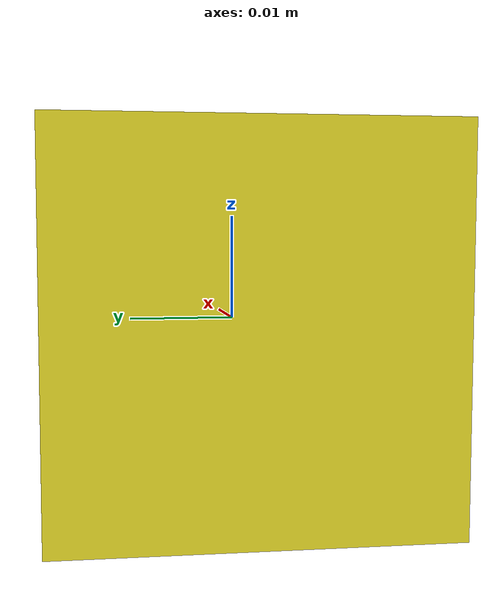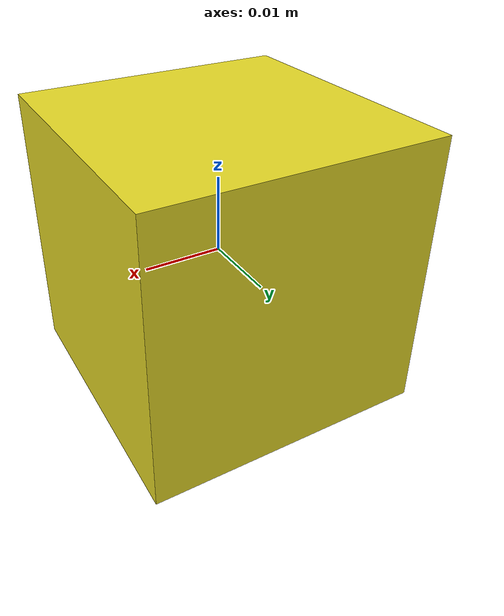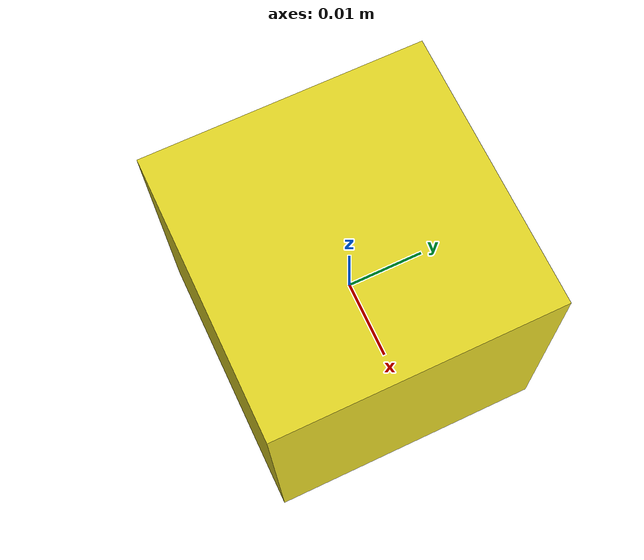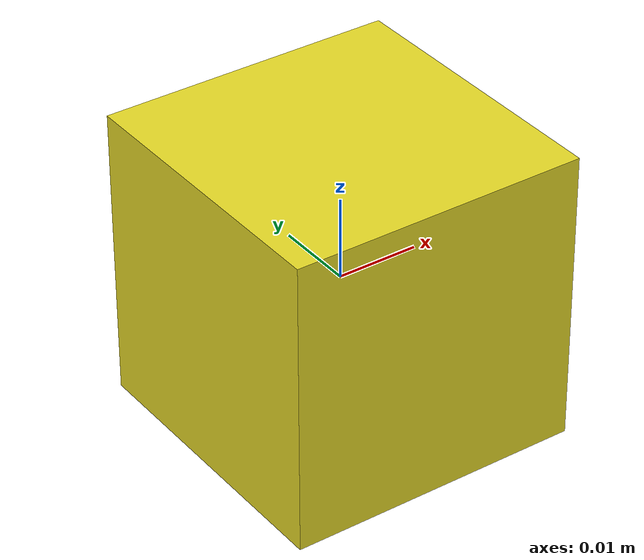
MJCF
<mujoco model="Cube">
  <compiler texturedir="assets"/>
  <asset>
    <texture type="skybox" builtin="gradient" width="512" height="512"/>
    <texture file="white.png" gridsize="3 4" gridlayout=".....F......" rgb1="0 0 0"/>
    <texture file="yellow.png" gridsize="3 4" gridlayout=".....B......" rgb1="0 0 0"/>
    <texture file="red.png" gridsize="3 4" gridlayout=".....D......" rgb1="0 0 0"/>
    <texture file="orange.png" gridsize="3 4" gridlayout=".....U......" rgb1="0 0 0"/>
    <texture file="blue.png" gridsize="3 4" gridlayout=".....R......" rgb1="0 0 0"/>
    <texture file="green.png" gridsize="3 4" gridlayout=".....L......" rgb1="0 0 0"/>
    <texture file="red_white.png" gridsize="3 4" gridlayout=".....DF....." rgb1="0 0 0"/>
    <texture file="orange_white.png" gridsize="3 4" gridlayout=".....UF....." rgb1="0 0 0"/>
    <texture file="blue_white.png" gridsize="3 4" gridlayout=".....RF....." rgb1="0 0 0"/>
    <texture file="green_white.png" gridsize="3 4" gridlayout=".....LF....." rgb1="0 0 0"/>
    <texture file="red_yellow.png" gridsize="3 4" gridlayout=".....DB....." rgb1="0 0 0"/>
    <texture file="orange_yellow.png" gridsize="3 4" gridlayout=".....UB....." rgb1="0 0 0"/>
    <texture file="blue_yellow.png" gridsize="3 4" gridlayout=".....RB....." rgb1="0 0 0"/>
    <texture file="green_yellow.png" gridsize="3 4" gridlayout=".....LB....." rgb1="0 0 0"/>
    <texture file="orange_red.png" gridsize="3 4" gridlayout=".....UD....." rgb1="0 0 0"/>
    <texture file="blue_red.png" gridsize="3 4" gridlayout=".....RD....." rgb1="0 0 0"/>
    <texture file="green_red.png" gridsize="3 4" gridlayout=".....LD....." rgb1="0 0 0"/>
    <texture file="blue_orange.png" gridsize="3 4" gridlayout=".....RU....." rgb1="0 0 0"/>
    <texture file="green_orange.png" gridsize="3 4" gridlayout=".....LU....." rgb1="0 0 0"/>
    <texture file="blue_red_white.png" gridsize="3 4" gridlayout=".....RDF...." rgb1="0 0 0"/>
    <texture file="green_red_white.png" gridsize="3 4" gridlayout=".....LDF...." rgb1="0 0 0"/>
    <texture file="blue_orange_white.png" gridsize="3 4" gridlayout=".....RUF...." rgb1="0 0 0"/>
    <texture file="green_orange_white.png" gridsize="3 4" gridlayout=".....LUF...." rgb1="0 0 0"/>
    <texture file="blue_red_yellow.png" gridsize="3 4" gridlayout=".....RDB...." rgb1="0 0 0"/>
    <texture file="green_red_yellow.png" gridsize="3 4" gridlayout=".....LDB...." rgb1="0 0 0"/>
    <texture file="blue_orange_yellow.png" gridsize="3 4" gridlayout=".....RUB...." rgb1="0 0 0"/>
    <texture file="green_orange_yellow.png" gridsize="3 4" gridlayout=".....LUB...." rgb1="0 0 0"/>
    <material name="white" texture="white"/>
    <material name="yellow" texture="yellow"/>
    <material name="red" texture="red"/>
    <material name="orange" texture="orange"/>
    <material name="blue" texture="blue"/>
    <material name="green" texture="green"/>
    <material name="red_white" texture="red_white"/>
    <material name="orange_white" texture="orange_white"/>
    <material name="blue_white" texture="blue_white"/>
    <material name="green_white" texture="green_white"/>
    <material name="red_yellow" texture="red_yellow"/>
    <material name="orange_yellow" texture="orange_yellow"/>
    <material name="blue_yellow" texture="blue_yellow"/>
    <material name="green_yellow" texture="green_yellow"/>
    <material name="orange_red" texture="orange_red"/>
    <material name="blue_red" texture="blue_red"/>
    <material name="green_red" texture="green_red"/>
    <material name="blue_orange" texture="blue_orange"/>
    <material name="green_orange" texture="green_orange"/>
    <material name="blue_red_white" texture="blue_red_white"/>
    <material name="green_red_white" texture="green_red_white"/>
    <material name="blue_orange_white" texture="blue_orange_white"/>
    <material name="green_orange_white" texture="green_orange_white"/>
    <material name="blue_red_yellow" texture="blue_red_yellow"/>
    <material name="green_red_yellow" texture="green_red_yellow"/>
    <material name="blue_orange_yellow" texture="blue_orange_yellow"/>
    <material name="green_orange_yellow" texture="green_orange_yellow"/>
  </asset>
<worldbody>
  <light pos="0 0 1"/>

  <!-- Centers -->
  <body name="c_y" mocap="true" pos="0 0 0" quat="1 0 0 0"><geom type="box" size="0.018 0.018 0.018" material="yellow"/></body>
  <body name="c_w" mocap="true" pos="0 0 0" quat="1 0 0 0"><geom type="box" size="0.018 0.018 0.018" material="white"/></body>
  <body name="c_b" mocap="true" pos="0 0 0" quat="1 0 0 0"><geom type="box" size="0.018 0.018 0.018" material="blue"/></body>
  <body name="c_g" mocap="true" pos="0 0 0" quat="1 0 0 0"><geom type="box" size="0.018 0.018 0.018" material="green"/></body>
  <body name="c_r" mocap="true" pos="0 0 0" quat="1 0 0 0"><geom type="box" size="0.018 0.018 0.018" material="red"/></body>
  <body name="c_o" mocap="true" pos="0 0 0" quat="1 0 0 0"><geom type="box" size="0.018 0.018 0.018" material="orange"/></body>

  <!-- Edges -->
  <body name="e_by" mocap="true" pos="0 0 0" quat="1 0 0 0"><geom type="box" size="0.018 0.018 0.018" material="blue_yellow"/></body>
  <body name="e_bo" mocap="true" pos="0 0 0" quat="1 0 0 0"><geom type="box" size="0.018 0.018 0.018" material="blue_orange"/></body>
  <body name="e_br" mocap="true" pos="0 0 0" quat="1 0 0 0"><geom type="box" size="0.018 0.018 0.018" material="blue_red"/></body>
  <body name="e_bw" mocap="true" pos="0 0 0" quat="1 0 0 0"><geom type="box" size="0.018 0.018 0.018" material="blue_white"/></body>
  <body name="e_yo" mocap="true" pos="0 0 0" quat="1 0 0 0"><geom type="box" size="0.018 0.018 0.018" material="orange_yellow"/></body>
  <body name="e_yr" mocap="true" pos="0 0 0" quat="1 0 0 0"><geom type="box" size="0.018 0.018 0.018" material="red_yellow"/></body>
  <body name="e_wo" mocap="true" pos="0 0 0" quat="1 0 0 0"><geom type="box" size="0.018 0.018 0.018" material="orange_white"/></body>
  <body name="e_wr" mocap="true" pos="0 0 0" quat="1 0 0 0"><geom type="box" size="0.018 0.018 0.018" material="red_white"/></body>
  <body name="e_gy" mocap="true" pos="0 0 0" quat="1 0 0 0"><geom type="box" size="0.018 0.018 0.018" material="green_yellow"/></body>
  <body name="e_go" mocap="true" pos="0 0 0" quat="1 0 0 0"><geom type="box" size="0.018 0.018 0.018" material="green_orange"/></body>
  <body name="e_gr" mocap="true" pos="0 0 0" quat="1 0 0 0"><geom type="box" size="0.018 0.018 0.018" material="green_red"/></body>
  <body name="e_gw" mocap="true" pos="0 0 0" quat="1 0 0 0"><geom type="box" size="0.018 0.018 0.018" material="green_white"/></body>

  <!-- Corners -->
  <body name="x_byo" mocap="true" pos="0 0 0" quat="1 0 0 0"><geom type="box" size="0.018 0.018 0.018" material="blue_orange_yellow"/></body>
  <body name="x_byr" mocap="true" pos="0 0 0" quat="1 0 0 0"><geom type="box" size="0.018 0.018 0.018" material="blue_red_yellow"/></body>
  <body name="x_bwo" mocap="true" pos="0 0 0" quat="1 0 0 0"><geom type="box" size="0.018 0.018 0.018" material="blue_orange_white"/></body>
  <body name="x_bwr" mocap="true" pos="0 0 0" quat="1 0 0 0"><geom type="box" size="0.018 0.018 0.018" material="blue_red_white"/></body>
  <body name="x_gyo" mocap="true" pos="0 0 0" quat="1 0 0 0"><geom type="box" size="0.018 0.018 0.018" material="green_orange_yellow"/></body>
  <body name="x_gyr" mocap="true" pos="0 0 0" quat="1 0 0 0"><geom type="box" size="0.018 0.018 0.018" material="green_red_yellow"/></body>
  <body name="x_gwo" mocap="true" pos="0 0 0" quat="1 0 0 0"><geom type="box" size="0.018 0.018 0.018" material="green_orange_white"/></body>
  <body name="x_gwr" mocap="true" pos="0 0 0" quat="1 0 0 0"><geom type="box" size="0.018 0.018 0.018" material="green_red_white"/></body>

</worldbody>
</mujoco>
